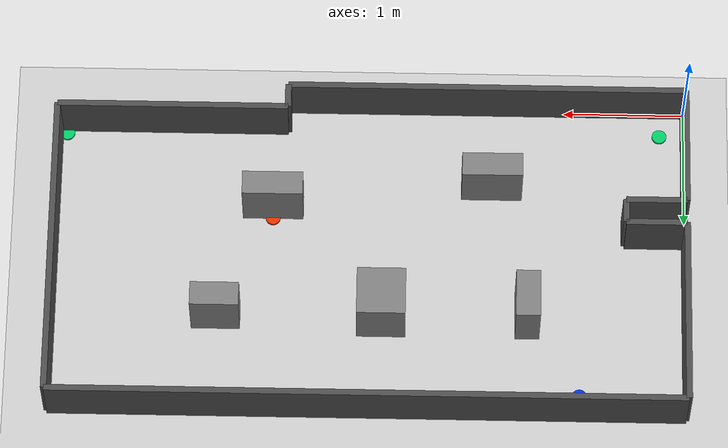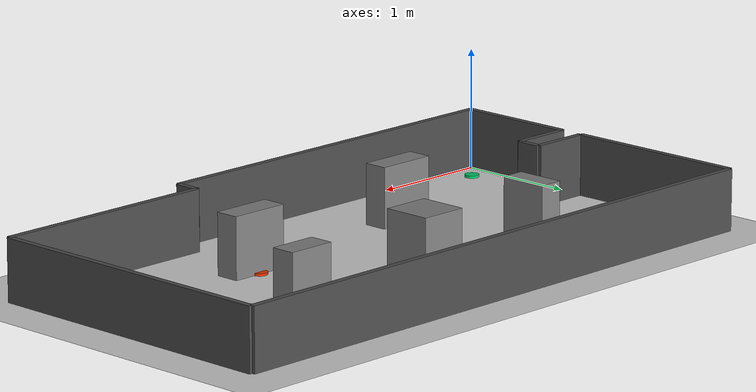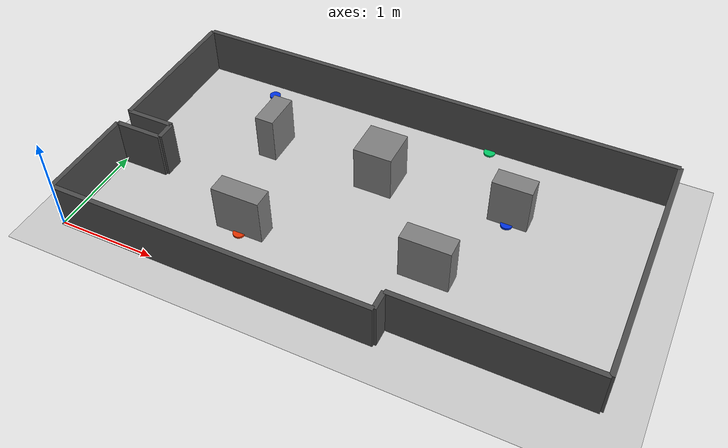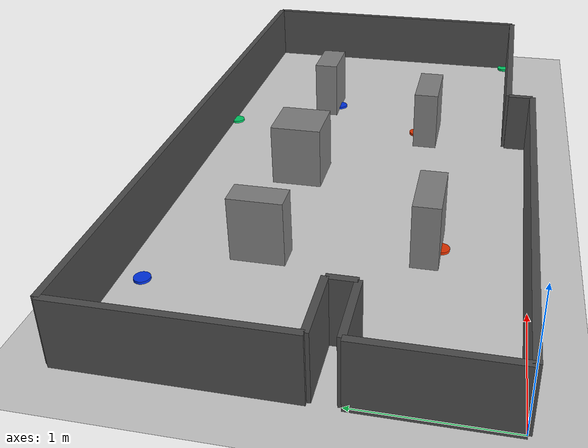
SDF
<sdf version='1.4'>
  <world name='turtlebot3_ttk4192'>

    <include>
      <uri>model://sun</uri>
    </include>

    <include>
      <uri>model://ground_plane</uri>
    </include>

    <physics type="ode">
      <real_time_update_rate>1000.0</real_time_update_rate>
      <max_step_size>0.001</max_step_size>
      <real_time_factor>1</real_time_factor>
      <ode>
        <solver>
          <type>quick</type>
          <iters>150</iters>
          <precon_iters>0</precon_iters>
          <sor>1.400000</sor>
          <use_dynamic_moi_rescaling>1</use_dynamic_moi_rescaling>
        </solver>
        <constraints>
          <cfm>0.00001</cfm>
          <erp>0.2</erp>
          <contact_max_correcting_vel>2000.000000</contact_max_correcting_vel>
          <contact_surface_layer>0.01000</contact_surface_layer>
        </constraints>
      </ode>
    </physics>

    <!-- ==================== OUTER WALLS ====================
         Map: 5.21m (x) wide, 2.55m (y) tall
         Origin (0,0) = bottom-left
    -->

    <!-- SOUTH WALL: x=0 to x=3.3, at y=0 -->
    <model name="wall_south_left">
      <static>true</static>
      <pose>1.65 0.0 0.25 0 0 0</pose>
      <link name="link">
        <collision name="collision">
          <geometry><box><size>3.3 0.05 0.5</size></box></geometry>
        </collision>
        <visual name="visual">
          <geometry><box><size>3.3 0.05 0.5</size></box></geometry>
          <material><ambient>0.3 0.3 0.3 1</ambient></material>
        </visual>
      </link>
    </model>

    <!-- SOUTH WALL STEP: vertical piece at x=3.3 going up to y=0.2 -->
    <model name="wall_south_step_vertical">
      <static>true</static>
      <pose>3.3 0.1 0.25 0 0 0</pose>
      <link name="link">
        <collision name="collision">
          <geometry><box><size>0.05 0.2 0.5</size></box></geometry>
        </collision>
        <visual name="visual">
          <geometry><box><size>0.05 0.2 0.5</size></box></geometry>
          <material><ambient>0.3 0.3 0.3 1</ambient></material>
        </visual>
      </link>
    </model>

    <!-- SOUTH WALL: right segment x=3.3 to x=5.21, at y=0.2 -->
    <model name="wall_south_right">
      <static>true</static>
      <pose>4.255 0.2 0.25 0 0 0</pose>
      <link name="link">
        <collision name="collision">
          <geometry><box><size>1.91 0.05 0.5</size></box></geometry>
        </collision>
        <visual name="visual">
          <geometry><box><size>1.91 0.05 0.5</size></box></geometry>
          <material><ambient>0.3 0.3 0.3 1</ambient></material>
        </visual>
      </link>
    </model>

    <!-- NORTH WALL: full width at y=2.55 -->
    <model name="wall_north">
      <static>true</static>
      <pose>2.605 2.75 0.25 0 0 0</pose>
      <link name="link">
        <collision name="collision">
          <geometry><box><size>5.21 0.05 0.5</size></box></geometry>
        </collision>
        <visual name="visual">
          <geometry><box><size>5.21 0.05 0.5</size></box></geometry>
          <material><ambient>0.3 0.3 0.3 1</ambient></material>
        </visual>
      </link>
    </model>

    <!-- WEST WALL: bottom segment y=0 to y=1.0 -->
    <model name="wall_west_bottom">
      <static>true</static>
      <pose>0.0 0.5 0.25 0 0 0</pose>
      <link name="link">
        <collision name="collision">
          <geometry><box><size>0.05 1.0 0.5</size></box></geometry>
        </collision>
        <visual name="visual">
          <geometry><box><size>0.05 1.0 0.5</size></box></geometry>
          <material><ambient>0.3 0.3 0.3 1</ambient></material>
        </visual>
      </link>
    </model>

    <!-- WEST WALL NOTCH: bottom horizontal at y=1.0, extends 0.5m inward -->
    <model name="wall_west_notch_bottom">
      <static>true</static>
      <pose>0.25 1.0 0.25 0 0 0</pose>
      <link name="link">
        <collision name="collision">
          <geometry><box><size>0.5 0.05 0.5</size></box></geometry>
        </collision>
        <visual name="visual">
          <geometry><box><size>0.5 0.05 0.5</size></box></geometry>
          <material><ambient>0.3 0.3 0.3 1</ambient></material>
        </visual>
      </link>
    </model>

    <!-- WEST WALL NOTCH: right vertical at x=0.5, y=1.0 to y=1.2 -->
    <model name="wall_west_notch_right">
      <static>true</static>
      <pose>0.5 1.1 0.25 0 0 0</pose>
      <link name="link">
        <collision name="collision">
          <geometry><box><size>0.05 0.2 0.5</size></box></geometry>
        </collision>
        <visual name="visual">
          <geometry><box><size>0.05 0.2 0.5</size></box></geometry>
          <material><ambient>0.3 0.3 0.3 1</ambient></material>
        </visual>
      </link>
    </model>

    <!-- WEST WALL NOTCH: top horizontal at y=1.2 back to wall -->
    <model name="wall_west_notch_top">
      <static>true</static>
      <pose>0.25 1.2 0.25 0 0 0</pose>
      <link name="link">
        <collision name="collision">
          <geometry><box><size>0.5 0.05 0.5</size></box></geometry>
        </collision>
        <visual name="visual">
          <geometry><box><size>0.5 0.05 0.5</size></box></geometry>
          <material><ambient>0.3 0.3 0.3 1</ambient></material>
        </visual>
      </link>
    </model>

    <!-- WEST WALL: top segment y=1.2 to y=2.55 -->
    <model name="wall_west_top">
      <static>true</static>
      <pose>0.0 1.975 0.25 0 0 0</pose>
      <link name="link">
        <collision name="collision">
          <geometry><box><size>0.05 1.55 0.5</size></box></geometry>
        </collision>
        <visual name="visual">
          <geometry><box><size>0.05 1.55 0.5</size></box></geometry>
          <material><ambient>0.3 0.3 0.3 1</ambient></material>
        </visual>
      </link>
    </model>

    <!-- EAST WALL: full height -->
    <model name="wall_east">
      <static>true</static>
      <pose>5.21 1.475 0.25 0 0 0</pose>
      <link name="link">
        <collision name="collision">
          <geometry><box><size>0.05 2.55 0.5</size></box></geometry>
        </collision>
        <visual name="visual">
          <geometry><box><size>0.05 2.55 0.5</size></box></geometry>
          <material><ambient>0.3 0.3 0.3 1</ambient></material>
        </visual>
      </link>
    </model>

    <!-- OBSTACLE 1: 0.2 x 0.4 -->
    <model name="obstacle_1">
      <static>true</static>
      <pose>1.3 1.85 0.25 0 0 0</pose>
      <link name="link">
        <collision name="collision">
          <geometry><box><size>0.2 0.4 0.5</size></box></geometry>
        </collision>
        <visual name="visual">
          <geometry><box><size>0.2 0.4 0.5</size></box></geometry>
          <material><ambient>0.5 0.5 0.5 1</ambient></material>
        </visual>
      </link>
    </model>

    <!-- OBSTACLE 2: 0.4 x 0.4 -->
    <model name="obstacle_2">
      <static>true</static>
      <pose>2.5 1.85 0.25 0 0 0</pose>
      <link name="link">
        <collision name="collision">
          <geometry><box><size>0.4 0.4 0.5</size></box></geometry>
        </collision>
        <visual name="visual">
          <geometry><box><size>0.4 0.4 0.5</size></box></geometry>
          <material><ambient>0.5 0.5 0.5 1</ambient></material>
        </visual>
      </link>
    </model>

    <!-- OBSTACLE 3: 0.4 x 0.2, equipment block near wp6 -->
    <model name="obstacle_3">
      <static>true</static>
      <pose>3.86 1.9 0.25 0 0 0</pose>
      <link name="link">
        <collision name="collision">
          <geometry><box><size>0.4 0.2 0.5</size></box></geometry>
        </collision>
        <visual name="visual">
          <geometry><box><size>0.4 0.2 0.5</size></box></geometry>
          <material><ambient>0.5 0.5 0.5 1</ambient></material>
        </visual>
      </link>
    </model>

    <!-- OBSTACLE 4: 0.5 x 0.2, bottom left -->
    <model name="obstacle_4">
      <static>true</static>
      <pose>1.6 0.7 0.25 0 0 0</pose>
      <link name="link">
        <collision name="collision">
          <geometry><box><size>0.5 0.2 0.5</size></box></geometry>
        </collision>
        <visual name="visual">
          <geometry><box><size>0.5 0.2 0.5</size></box></geometry>
          <material><ambient>0.5 0.5 0.5 1</ambient></material>
        </visual>
      </link>
    </model>

    <!-- OBSTACLE 5: 0.5 x 0.2, bottom right -->
    <model name="obstacle_5">
      <static>true</static>
      <pose>3.41 0.9 0.25 0 0 0</pose>
      <link name="link">
        <collision name="collision">
          <geometry><box><size>0.5 0.2 0.5</size></box></geometry>
        </collision>
        <visual name="visual">
          <geometry><box><size>0.5 0.2 0.5</size></box></geometry>
          <material><ambient>0.5 0.5 0.5 1</ambient></material>
        </visual>
      </link>
    </model>

    <model name="wp0_marker">
        <static>true</static>
        <pose>0.2 0.2 0.01 0 0 0</pose>
        <link name="link">
            <visual name="visual">
            <geometry><cylinder><radius>0.06</radius><length>0.02</length></cylinder></geometry>
            <material><ambient>0 0.8 0.4 1</ambient></material>
            </visual>
        </link>
    </model>

    <!-- wp1 (1.6, 0.6) -->
    <model name="wp1_marker">
        <static>true</static>
        <pose>1.6 0.6 0.01 0 0 0</pose>
        <link name="link">
            <visual name="visual">
            <geometry><cylinder><radius>0.06</radius><length>0.02</length></cylinder></geometry>
            <material><ambient>0.9 0.2 0 1</ambient></material>
            </visual>
        </link>
    </model>

    <!-- wp2 (1.8, 4.21) -->
    <model name="wp2_marker">
        <static>true</static>
        <pose>3.41 1 0.01 0 0 0</pose>
        <link name="link">
            <visual name="visual">
            <geometry><cylinder><radius>0.06</radius><length>0.02</length></cylinder></geometry>
            <material><ambient>0.9 0.2 0 1</ambient></material>
            </visual>
        </link>
    </model>

    <!-- wp3 (3.36, 2.7) -->
    <model name="wp3_marker">
    <static>true</static>
    <pose>3.36 2.7 0.01 0 0 0</pose>
    <link name="link">
        <visual name="visual">
        <geometry><cylinder><radius>0.06</radius><length>0.02</length></cylinder></geometry>
        <material><ambient>0 0.8 0.4 1</ambient></material>
        </visual>
    </link>
    </model>

    <!-- wp4 (5.15, 0.25) -->
    <model name="wp4_marker">
        <static>true</static>
        <pose>5.15 0.25 0.01 0 0 0</pose>
        <link name="link">
            <visual name="visual">
            <geometry><cylinder><radius>0.06</radius><length>0.02</length></cylinder></geometry>
            <material><ambient>0 0.8 0.4 1</ambient></material>
            </visual>
        </link>
    </model>

    <!-- wp5 (0.87, 2.56) -->
    <model name="wp5_marker">
    <static>true</static>
    <pose>0.87 2.56 0.01 0 0 0</pose>
    <link name="link">
        <visual name="visual">
        <geometry><cylinder><radius>0.06</radius><length>0.02</length></cylinder></geometry>
        <material><ambient>0 0.2 0.9 1</ambient></material>
        </visual>
    </link>
    </model>

    <!-- wp6 (3.86, 1.85) -->
    <model name="wp6_marker">
    <static>true</static>
    <pose>3.86 1.80 0.01 0 0 0</pose>
    <link name="link">
        <visual name="visual">
        <geometry><cylinder><radius>0.06</radius><length>0.02</length></cylinder></geometry>
        <material><ambient>0 0.2 0.9 1</ambient></material>
        </visual>
    </link>
    </model>

    <scene>
      <ambient>0.4 0.4 0.4 1</ambient>
      <background>0.7 0.7 0.7 1</background>
      <shadows>true</shadows>
    </scene>

    <gui fullscreen='0'>
      <camera name='user_camera'>
        <pose>2.605 1.275 12.0 0 1.5708 0</pose>
        <view_controller>orbit</view_controller>
      </camera>
    </gui>

  </world>
</sdf>
